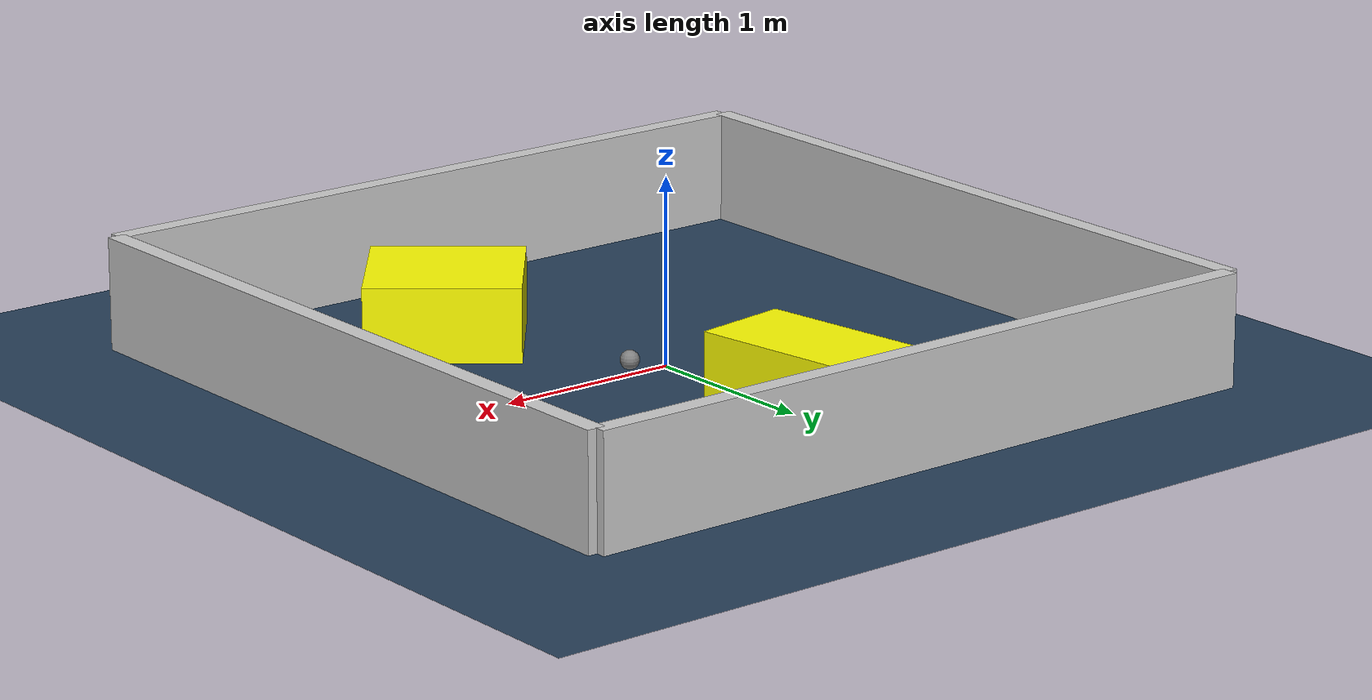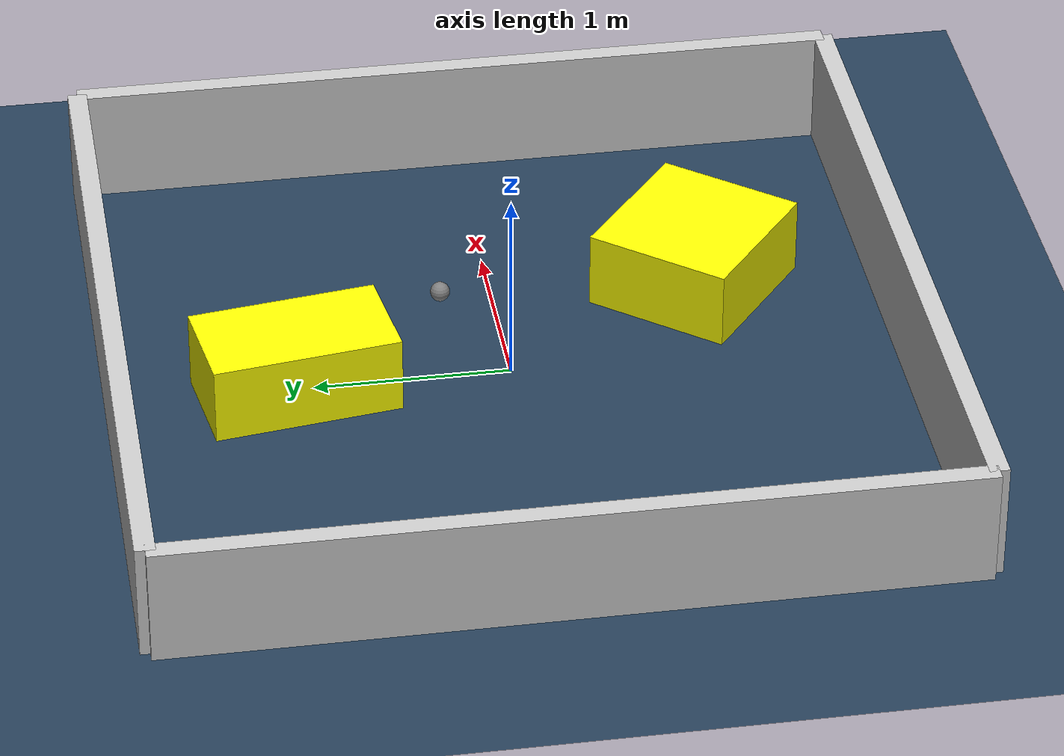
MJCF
<?xml version="1.0" ?>
<mujoco model="generated_environment">
  <option timestep="0.01" integrator="RK4" cone="elliptic"/>
  <default>
    <geom density="1"/>
  </default>
  <asset>
    <texture builtin="gradient" height="3072" rgb1="0.3 0.5 0.7" rgb2="0 0 0" type="skybox" width="512"/>
    <texture builtin="checker" height="300" mark="edge" markrgb="0.8 0.8 0.8" name="groundplane" rgb1="0.2 0.3 0.4" rgb2="0.1 0.2 0.3" type="2d" width="300"/>
    <material name="groundplane" reflectance="0.2" texrepeat="5 5" texture="groundplane" texuniform="true"/>
    <material name="robot" rgba="0.0 1.0 0.0 1"/>
  </asset>
  <worldbody>
    <light dir="0 0 -1" directional="true" pos="0 0 1.5"/>
    <geom condim="4" friction="1.0 0.005 0.001" material="groundplane" name="floor" size="0 0 0.05" type="plane"/>
    <body name="walls">
      <geom name="wall_1" condim="4" pos="-2.0 0.0 0.3" rgba="0.800000011920929 0.800000011920929 0.800000011920929 1.0" size="0.05 2.0 0.3" type="box"/>
      <geom name="wall_2" condim="4" pos="2.0 0.0 0.3" rgba="0.800000011920929 0.800000011920929 0.800000011920929 1.0" size="0.05 2.0 0.3" type="box"/>
      <geom name="wall_3" condim="4" pos="0.0 -2.0 0.3" rgba="0.800000011920929 0.800000011920929 0.800000011920929 1.0" size="2.0 0.05 0.3" type="box"/>
      <geom name="wall_4" condim="4" pos="0.0 2.0 0.3" rgba="0.800000011920929 0.800000011920929 0.800000011920929 1.0" size="2.0 0.05 0.3" type="box"/>
    </body>
    <body name="robot">
      <joint name="joint_x" type="slide" pos="0 0 0" axis="1 0 0"/>
      <joint name="joint_y" type="slide" pos="0 0 0" axis="0 1 0"/>
      <geom name="robot" type="sphere" pos="0.4665979482076912 0.29361191940878406 0.2" size="0.05" mass="5." friction="1.0 0.005 0.0001" condim="4"/>
      <site name="sensor_ball"/>
    </body>
    <body name="obstacle_1_movable">
      <geom name="obstacle_1_movable" condim="4" pos="-0.04498129632310044 1.0916486217479229 0.2" euler="0 0 278.3014566693341" friction="1.0 0.005 0.001" rgba="1 1 0 1" size="0.47922309968260557 0.26475679904918414 0.2" type="box" mass="0.1"/>
      <joint type="free"/>
    </body>
    <body name="obstacle_2_movable">
      <geom name="obstacle_2_movable" condim="4" pos="0.6206006848898058 -1.046890217696086 0.2" euler="0 0 231.22483817558103" friction="1.0 0.005 0.001" rgba="1 1 0 1" size="0.385051366279448 0.40708705555074287 0.2" type="box" mass="0.1"/>
      <joint type="free"/>
    </body>
  </worldbody>
  <actuator>
    <motor name="actuator_x" joint="joint_x" gear="1" ctrlrange="-1 1"/>
    <motor name="actuator_y" joint="joint_y" gear="1" ctrlrange="-1 1"/>
  </actuator>
</mujoco>
